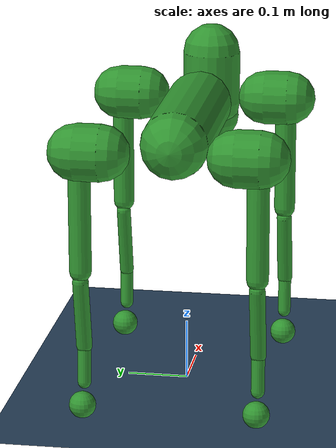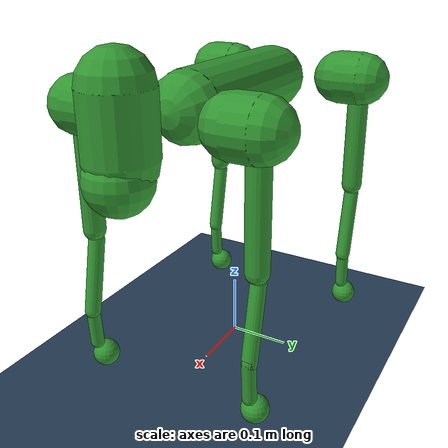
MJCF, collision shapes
<mujoco model="go2">

  <compiler angle="radian" meshdir="assets" autolimits="true" />
  <size nkey="1" />
  <visual>
    <global azimuth="135" elevation="-25" offwidth="1920" offheight="1080" />
    <quality shadowsize="8192" />
    <headlight ambient="0.3 0.3 0.3" diffuse="0.6 0.6 0.6" specular="0 0 0" />
    <rgba haze="0.15 0.25 0.35 1" force="1 0 0 1" />
  </visual>
  <statistic center="0 0 0.1" extent="0.8" meansize="0.03" />
  <default>
    <default class="robot/main">
      <default class="robot/go2">
        <site group="5" rgba="1 0 0 1" />
        <default class="robot/visual">
          <geom type="mesh" contype="0" conaffinity="0" group="2" density="0" />
        </default>
        <default class="robot/collision">
          <geom type="capsule" group="3" condim="1" rgba="0.2 0.6 0.2 0.3" />
          <default class="robot/foot">
            <geom type="sphere" size="0.022" condim="3" priority="1" friction="0.6" solimp="0.9 0.95 0.023" />
          </default>
        </default>
      </default>
    </default>
  </default>
  <asset>
    <texture type="skybox" builtin="gradient" rgb1="0.3 0.5 0.7" rgb2="0 0 0" width="512" height="3072" />
    <texture type="2d" name="groundplane" builtin="checker" mark="edge" rgb1="0.2 0.3 0.4" rgb2="0.1 0.2 0.3" markrgb="0.8 0.8 0.8" width="300" height="300" />
    <material name="groundplane" texture="groundplane" texuniform="true" texrepeat="2 2" reflectance="0.2" />
    <material name="robot/metal" rgba="0.9 0.95 0.95 1" />
    <material name="robot/black" rgba="0 0 0 1" />
    <material name="robot/white" rgba="1 1 1 1" />
    <material name="robot/gray" rgba="0.671705 0.692426 0.774270 1" />
    <mesh name="robot/base_0" content_type="model/obj" file="base_0.obj" />
    <mesh name="robot/base_1" content_type="model/obj" file="base_1.obj" />
    <mesh name="robot/base_2" content_type="model/obj" file="base_2.obj" />
    <mesh name="robot/base_3" content_type="model/obj" file="base_3.obj" />
    <mesh name="robot/base_4" content_type="model/obj" file="base_4.obj" />
    <mesh name="robot/hip_0" content_type="model/obj" file="hip_0.obj" />
    <mesh name="robot/hip_1" content_type="model/obj" file="hip_1.obj" />
    <mesh name="robot/thigh_0" content_type="model/obj" file="thigh_0.obj" />
    <mesh name="robot/thigh_1" content_type="model/obj" file="thigh_1.obj" />
    <mesh name="robot/thigh_mirror_0" content_type="model/obj" file="thigh_mirror_0.obj" />
    <mesh name="robot/thigh_mirror_1" content_type="model/obj" file="thigh_mirror_1.obj" />
    <mesh name="robot/calf_0" content_type="model/obj" file="calf_0.obj" />
    <mesh name="robot/calf_1" content_type="model/obj" file="calf_1.obj" />
    <mesh name="robot/calf_mirror_0" content_type="model/obj" file="calf_mirror_0.obj" />
    <mesh name="robot/calf_mirror_1" content_type="model/obj" file="calf_mirror_1.obj" />
    <mesh name="robot/foot" content_type="model/obj" file="foot.obj" />
  </asset>
  <worldbody>
    <light pos="0 0 3.5" dir="0 0 -1" directional="true" />
    <geom name="floor" type="plane" size="0 0 0.05" material="groundplane" contype="1" conaffinity="1" />
    <body name="robot/base_link" childclass="robot/go2" pos="0 0 0.445">
      <inertial pos="0.021112 0 -0.005366" quat="-0.000543471 0.713435 -0.00173769 0.700719" mass="6.921" diaginertia="0.107027 0.0980771 0.0244531" />
      <freejoint name="robot/floating_base_joint" />
      <geom class="robot/visual" material="robot/black" mesh="robot/base_0" />
      <geom class="robot/visual" material="robot/black" mesh="robot/base_1" />
      <geom class="robot/visual" material="robot/black" mesh="robot/base_2" />
      <geom class="robot/visual" material="robot/white" mesh="robot/base_3" />
      <geom class="robot/visual" material="robot/gray" mesh="robot/base_4" />
      <geom name="robot/base1_collision" class="robot/collision" fromto="-0.135 0 0 0.135 0 0" size="0.055" />
      <geom name="robot/base2_collision" class="robot/collision" size="0.05 0.045" pos="0.285 0 0.01" />
      <geom name="robot/base3_collision" class="robot/collision" size="0.047" pos="0.293 0 -0.06" type="sphere" />
      <site name="robot/imu" pos="-0.02557 0 0.04232" />
      <camera name="robot/tracking" pos="1.734 -1.135 0.35" quat="0.683353 0.555871 0.298684 0.367183" mode="trackcom" />
      <light pos="0 0 2" dir="0 0 -1" castshadow="false" mode="trackcom" />
      <body name="robot/FL_hip" pos="0.1934 0.0465 0">
        <inertial pos="-0.0054 0.00194 -0.000105" quat="0.497014 0.499245 0.505462 0.498237" mass="0.678" diaginertia="0.00088403 0.000596003 0.000479967" />
        <joint name="robot/FL_hip_joint" axis="1 0 0" range="-1.0472 1.0472" armature="0.01" />
        <geom class="robot/visual" material="robot/metal" mesh="robot/hip_0" />
        <geom class="robot/visual" material="robot/gray" mesh="robot/hip_1" />
        <geom name="robot/FL_hip_collision" class="robot/collision" size="0.046 0.02" pos="0 0.08 0" quat="1 1 0 0" />
        <body name="robot/FL_thigh" pos="0 0.0955 0">
          <inertial pos="-0.00374 -0.0223 -0.0327" quat="0.829533 0.0847635 -0.0200632 0.551623" mass="1.152" diaginertia="0.00594973 0.00584149 0.000878787" />
          <joint name="robot/FL_thigh_joint" axis="0 1 0" range="-1.5708 3.4907" armature="0.01" />
          <geom class="robot/visual" material="robot/metal" mesh="robot/thigh_0" />
          <geom class="robot/visual" material="robot/gray" mesh="robot/thigh_1" />
          <geom name="robot/FL_thigh_collision" class="robot/collision" size="0.018 0.09" pos="0 0 -0.1065" />
          <body name="robot/FL_calf" pos="0 0 -0.213">
            <inertial pos="0.00629595 -0.000622121 -0.141417" quat="0.710672 0.00154099 -0.00450087 0.703508" mass="0.241352" diaginertia="0.0014901 0.00146356 5.31397e-05" />
            <joint name="robot/FL_calf_joint" axis="0 1 0" range="-2.7227 -0.83776" armature="0.02" />
            <geom class="robot/visual" material="robot/gray" mesh="robot/calf_0" />
            <geom class="robot/visual" material="robot/black" mesh="robot/calf_1" />
            <geom name="robot/FL_calf1_collision" class="robot/collision" size="0.012 0.06" pos="0.008 0 -0.06" quat="0.994493 0 -0.104807 0" />
            <geom name="robot/FL_calf2_collision" class="robot/collision" size="0.011 0.0325" pos="0.02 0 -0.148" quat="0.999688 0 0.0249974 0" />
            <geom class="robot/visual" pos="0 0 -0.213" material="robot/black" mesh="robot/foot" />
            <geom name="robot/FL_foot_collision" class="robot/foot" pos="0 0 -0.213" />
            <site name="robot/FL" pos="0 0 -0.213" />
          </body>
        </body>
      </body>
      <body name="robot/FR_hip" pos="0.1934 -0.0465 0">
        <inertial pos="-0.0054 -0.00194 -0.000105" quat="0.498237 0.505462 0.499245 0.497014" mass="0.678" diaginertia="0.00088403 0.000596003 0.000479967" />
        <joint name="robot/FR_hip_joint" axis="1 0 0" range="-1.0472 1.0472" armature="0.01" />
        <geom class="robot/visual" material="robot/metal" mesh="robot/hip_0" quat="4.63268e-05 1 0 0" />
        <geom class="robot/visual" material="robot/gray" mesh="robot/hip_1" quat="4.63268e-05 1 0 0" />
        <geom name="robot/FR_hip_collision" class="robot/collision" size="0.046 0.02" pos="0 -0.08 0" quat="0.707107 0.707107 0 0" />
        <body name="robot/FR_thigh" pos="0 -0.0955 0">
          <inertial pos="-0.00374 0.0223 -0.0327" quat="0.551623 -0.0200632 0.0847635 0.829533" mass="1.152" diaginertia="0.00594973 0.00584149 0.000878787" />
          <joint name="robot/FR_thigh_joint" axis="0 1 0" range="-1.5708 3.4907" armature="0.01" />
          <geom class="robot/visual" material="robot/metal" mesh="robot/thigh_mirror_0" />
          <geom class="robot/visual" material="robot/gray" mesh="robot/thigh_mirror_1" />
          <geom name="robot/FR_thigh_collision" class="robot/collision" size="0.018 0.09" pos="0 0 -0.1065" />
          <body name="robot/FR_calf" pos="0 0 -0.213">
            <inertial pos="0.00629595 0.000622121 -0.141417" quat="0.703508 -0.00450087 0.00154099 0.710672" mass="0.241352" diaginertia="0.0014901 0.00146356 5.31397e-05" />
            <joint name="robot/FR_calf_joint" axis="0 1 0" range="-2.7227 -0.83776" armature="0.02" />
            <geom class="robot/visual" material="robot/gray" mesh="robot/calf_mirror_0" />
            <geom class="robot/visual" material="robot/black" mesh="robot/calf_mirror_1" />
            <geom name="robot/FR_calf1_collision" class="robot/collision" size="0.013 0.06" pos="0.01 0 -0.06" quat="0.995004 0 -0.0998334 0" />
            <geom name="robot/FR_calf2_collision" class="robot/collision" size="0.011 0.0325" pos="0.02 0 -0.148" quat="0.999688 0 0.0249974 0" />
            <geom class="robot/visual" pos="0 0 -0.213" material="robot/black" mesh="robot/foot" />
            <geom name="robot/FR_foot_collision" class="robot/foot" pos="0 0 -0.213" />
            <site name="robot/FR" pos="0 0 -0.213" />
          </body>
        </body>
      </body>
      <body name="robot/RL_hip" pos="-0.1934 0.0465 0">
        <inertial pos="0.0054 0.00194 -0.000105" quat="0.505462 0.498237 0.497014 0.499245" mass="0.678" diaginertia="0.00088403 0.000596003 0.000479967" />
        <joint name="robot/RL_hip_joint" axis="1 0 0" range="-1.0472 1.0472" armature="0.01" />
        <geom class="robot/visual" material="robot/metal" mesh="robot/hip_0" quat="4.63268e-05 0 1 0" />
        <geom class="robot/visual" material="robot/gray" mesh="robot/hip_1" quat="4.63268e-05 0 1 0" />
        <geom name="robot/RL_hip_collision" class="robot/collision" size="0.046 0.02" pos="0 0.08 0" quat="0.707107 0.707107 0 0" />
        <body name="robot/RL_thigh" pos="0 0.0955 0">
          <inertial pos="-0.00374 -0.0223 -0.0327" quat="0.829533 0.0847635 -0.0200632 0.551623" mass="1.152" diaginertia="0.00594973 0.00584149 0.000878787" />
          <joint name="robot/RL_thigh_joint" axis="0 1 0" range="-0.5236 4.5379" armature="0.01" />
          <geom class="robot/visual" material="robot/metal" mesh="robot/thigh_0" />
          <geom class="robot/visual" material="robot/gray" mesh="robot/thigh_1" />
          <geom name="robot/RL_thigh_collision" class="robot/collision" size="0.018 0.09" pos="0 0 -0.1065" />
          <body name="robot/RL_calf" pos="0 0 -0.213">
            <inertial pos="0.00629595 -0.000622121 -0.141417" quat="0.710672 0.00154099 -0.00450087 0.703508" mass="0.241352" diaginertia="0.0014901 0.00146356 5.31397e-05" />
            <joint name="robot/RL_calf_joint" axis="0 1 0" range="-2.7227 -0.83776" armature="0.02" />
            <geom class="robot/visual" material="robot/gray" mesh="robot/calf_0" />
            <geom class="robot/visual" material="robot/black" mesh="robot/calf_1" />
            <geom name="robot/RL_calf1_collision" class="robot/collision" size="0.013 0.06" pos="0.01 0 -0.06" quat="0.995004 0 -0.0998334 0" />
            <geom name="robot/RL_calf2_collision" class="robot/collision" size="0.011 0.0325" pos="0.02 0 -0.148" quat="0.999688 0 0.0249974 0" />
            <geom class="robot/visual" pos="0 0 -0.213" material="robot/black" mesh="robot/foot" />
            <geom name="robot/RL_foot_collision" class="robot/foot" pos="0 0 -0.213" />
            <site name="robot/RL" pos="0 0 -0.213" />
          </body>
        </body>
      </body>
      <body name="robot/RR_hip" pos="-0.1934 -0.0465 0">
        <inertial pos="0.0054 -0.00194 -0.000105" quat="0.499245 0.497014 0.498237 0.505462" mass="0.678" diaginertia="0.00088403 0.000596003 0.000479967" />
        <joint name="robot/RR_hip_joint" axis="1 0 0" range="-1.0472 1.0472" armature="0.01" />
        <geom class="robot/visual" material="robot/metal" mesh="robot/hip_0" quat="2.14617e-09 4.63268e-05 4.63268e-05 -1" />
        <geom class="robot/visual" material="robot/gray" mesh="robot/hip_1" quat="2.14617e-09 4.63268e-05 4.63268e-05 -1" />
        <geom name="robot/RR_hip_collision" class="robot/collision" size="0.046 0.02" pos="0 -0.08 0" quat="0.707107 0.707107 0 0" />
        <body name="robot/RR_thigh" pos="0 -0.0955 0">
          <inertial pos="-0.00374 0.0223 -0.0327" quat="0.551623 -0.0200632 0.0847635 0.829533" mass="1.152" diaginertia="0.00594973 0.00584149 0.000878787" />
          <joint name="robot/RR_thigh_joint" axis="0 1 0" range="-0.5236 4.5379" armature="0.01" />
          <geom class="robot/visual" material="robot/metal" mesh="robot/thigh_mirror_0" />
          <geom class="robot/visual" material="robot/gray" mesh="robot/thigh_mirror_1" />
          <geom name="robot/RR_thigh_collision" class="robot/collision" size="0.018 0.09" pos="0 0 -0.1065" />
          <body name="robot/RR_calf" pos="0 0 -0.213">
            <inertial pos="0.00629595 0.000622121 -0.141417" quat="0.703508 -0.00450087 0.00154099 0.710672" mass="0.241352" diaginertia="0.0014901 0.00146356 5.31397e-05" />
            <joint name="robot/RR_calf_joint" axis="0 1 0" range="-2.7227 -0.83776" armature="0.02" />
            <geom class="robot/visual" material="robot/gray" mesh="robot/calf_mirror_0" />
            <geom class="robot/visual" material="robot/black" mesh="robot/calf_mirror_1" />
            <geom name="robot/RR_calf1_collision" class="robot/collision" size="0.013 0.06" pos="0.01 0 -0.06" quat="0.995004 0 -0.0998334 0" />
            <geom name="robot/RR_calf2_collision" class="robot/collision" size="0.011 0.0325" pos="0.02 0 -0.148" quat="0.999688 0 0.0249974 0" />
            <geom class="robot/visual" pos="0 0 -0.213" material="robot/black" mesh="robot/foot" />
            <geom name="robot/RR_foot_collision" class="robot/foot" pos="0 0 -0.213" />
            <site name="robot/RR" pos="0 0 -0.213" />
          </body>
        </body>
      </body>
    </body>
  </worldbody>
  <actuator>
    <general name="robot/FL_hip_joint" joint="robot/FL_hip_joint" ctrllimited="false" ctrlrange="-1.0472 1.0472" forcelimited="true" forcerange="-23.5 23.5" biastype="affine" gainprm="20" biasprm="0 -20 -1" />
    <general name="robot/FL_thigh_joint" joint="robot/FL_thigh_joint" ctrllimited="false" ctrlrange="-1.5708 3.4907" forcelimited="true" forcerange="-23.5 23.5" biastype="affine" gainprm="20" biasprm="0 -20 -1" />
    <general name="robot/FL_calf_joint" joint="robot/FL_calf_joint" ctrllimited="false" ctrlrange="-2.7227 -0.83776" forcelimited="true" forcerange="-45 45" biastype="affine" gainprm="40" biasprm="0 -40 -2" />
    <general name="robot/FR_hip_joint" joint="robot/FR_hip_joint" ctrllimited="false" ctrlrange="-1.0472 1.0472" forcelimited="true" forcerange="-23.5 23.5" biastype="affine" gainprm="20" biasprm="0 -20 -1" />
    <general name="robot/FR_thigh_joint" joint="robot/FR_thigh_joint" ctrllimited="false" ctrlrange="-1.5708 3.4907" forcelimited="true" forcerange="-23.5 23.5" biastype="affine" gainprm="20" biasprm="0 -20 -1" />
    <general name="robot/FR_calf_joint" joint="robot/FR_calf_joint" ctrllimited="false" ctrlrange="-2.7227 -0.83776" forcelimited="true" forcerange="-45 45" biastype="affine" gainprm="40" biasprm="0 -40 -2" />
    <general name="robot/RL_hip_joint" joint="robot/RL_hip_joint" ctrllimited="false" ctrlrange="-1.0472 1.0472" forcelimited="true" forcerange="-23.5 23.5" biastype="affine" gainprm="20" biasprm="0 -20 -1" />
    <general name="robot/RL_thigh_joint" joint="robot/RL_thigh_joint" ctrllimited="false" ctrlrange="-0.5236 4.5379" forcelimited="true" forcerange="-23.5 23.5" biastype="affine" gainprm="20" biasprm="0 -20 -1" />
    <general name="robot/RL_calf_joint" joint="robot/RL_calf_joint" ctrllimited="false" ctrlrange="-2.7227 -0.83776" forcelimited="true" forcerange="-45 45" biastype="affine" gainprm="40" biasprm="0 -40 -2" />
    <general name="robot/RR_hip_joint" joint="robot/RR_hip_joint" ctrllimited="false" ctrlrange="-1.0472 1.0472" forcelimited="true" forcerange="-23.5 23.5" biastype="affine" gainprm="20" biasprm="0 -20 -1" />
    <general name="robot/RR_thigh_joint" joint="robot/RR_thigh_joint" ctrllimited="false" ctrlrange="-0.5236 4.5379" forcelimited="true" forcerange="-23.5 23.5" biastype="affine" gainprm="20" biasprm="0 -20 -1" />
    <general name="robot/RR_calf_joint" joint="robot/RR_calf_joint" ctrllimited="false" ctrlrange="-2.7227 -0.83776" forcelimited="true" forcerange="-45 45" biastype="affine" gainprm="40" biasprm="0 -40 -2" />
  </actuator>
  <sensor>
    <gyro site="robot/imu" name="robot/imu_ang_vel" />
    <velocimeter site="robot/imu" name="robot/imu_lin_vel" />
    <accelerometer site="robot/imu" name="robot/imu_lin_acc" />
    <framezaxis objtype="body" objname="world" reftype="site" refname="robot/imu" name="robot/imu_upvector" />
    <subtreeangmom body="robot/base_link" name="robot/root_angmom" />
  </sensor>
  <keyframe>
    <key name="init_state" qpos="0 0 0.32 1 0 0 0 -0.1 0.9 -1.8 0.1 0.9 -1.8 -0.1 0.9 -1.8 0.1 0.9 -1.8" ctrl="-0.1 0.9 -1.8 0.1 0.9 -1.8 -0.1 0.9 -1.8 0.1 0.9 -1.8" />
  </keyframe>
</mujoco>
